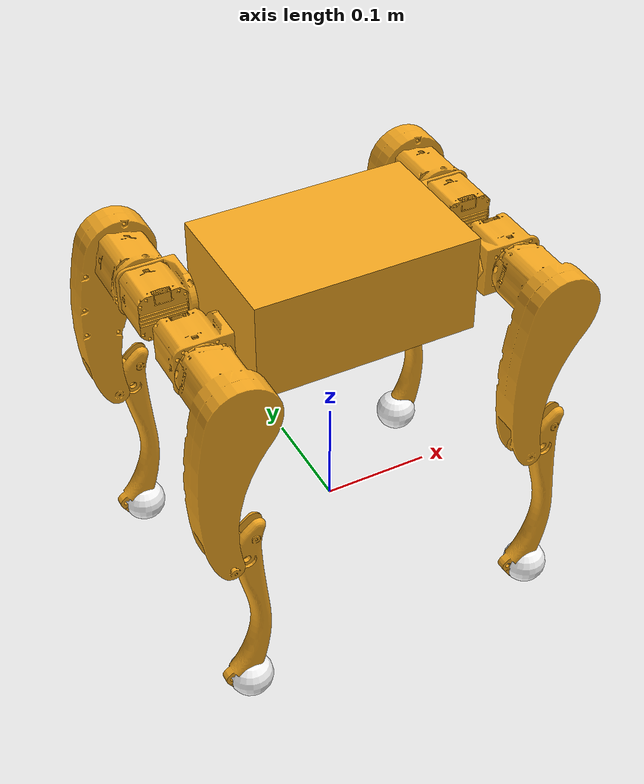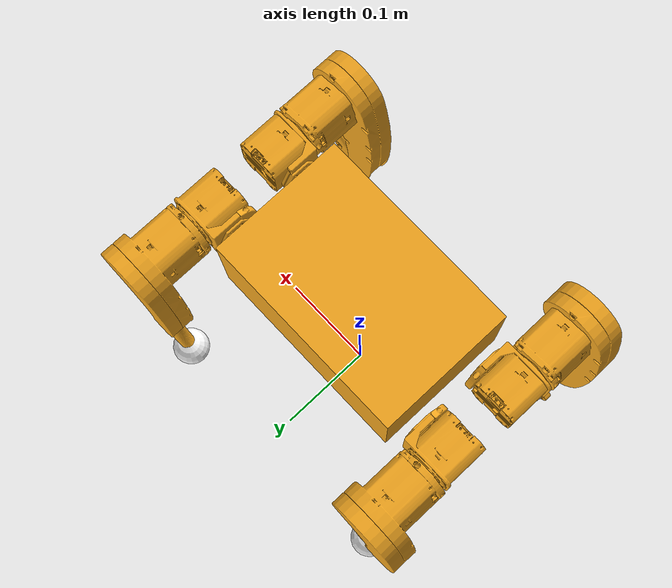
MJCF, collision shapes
<mujoco model="ri_4438">
  <compiler angle="radian" meshdir="../meshes/" autolimits="true" />
  <statistic meansize="0.118031" extent="0.565049" center="-0.00381955 -0.0037439 -0.0762009" />
  <asset>
    <!-- The original base mesh has 223,040 faces. These two files are an exact
         triangle-record split of that mesh for MuJoCo's 200,000-face STL limit. -->
    <mesh name="base_link_part_1" file="base_link_part_1.STL" />
    <mesh name="base_link_part_2" file="base_link_part_2.STL" />
    <mesh name="FL_hip" file="FL_hip.STL" />
    <mesh name="FL_thigh" file="FL_thigh.STL" />
    <mesh name="FL_calf" file="FL_calf.STL" />
    <mesh name="FL_foot" file="FL_foot.STL" />
    <mesh name="FR_hip" file="FR_hip.STL" />
    <mesh name="FR_thigh" file="FR_thigh.STL" />
    <mesh name="FR_calf" file="FR_calf.STL" />
    <mesh name="FR_foot" file="FR_foot.STL" />
    <mesh name="RL_hip" file="RL_hip.STL" />
    <mesh name="RL_thigh" file="RL_thigh.STL" />
    <mesh name="RL_calf" file="RL_calf.STL" />
    <mesh name="RL_foot" file="RL_foot.STL" />
    <mesh name="RR_hip" file="RR_hip.STL" />
    <mesh name="RR_thigh" file="RR_thigh.STL" />
    <mesh name="RR_calf" file="RR_calf.STL" />
    <mesh name="RR_foot" file="RR_foot.STL" />
    <material name="visual_body" rgba="0.78 0.78 0.78 1" specular="0.25" shininess="0.35" />
    <material name="collision_debug" rgba="0.95 0.65 0.12 0.35" specular="0" />
  </asset>
  <worldbody>
    <body name="base_link" pos="0 0 0.25">
      <freejoint name="float_base" />
      <inertial pos="-0.00301327 0.00204115 -0.000635" mass="2.74343032" fullinertia="0.00588039 0.01284666 0.01600904 0.00048912 0.00004378 -0.00003516" />
      <site name="imu" pos="0 0 0" />
      <geom type="mesh" contype="0" conaffinity="0" group="1" density="0" rgba="0.752941 0.752941 0.752941 1" mesh="base_link_part_1" material="visual_body" />
      <geom type="mesh" contype="0" conaffinity="0" group="1" density="0" rgba="0.752941 0.752941 0.752941 1" mesh="base_link_part_2" material="visual_body" />
      <!-- MuJoCo box size stores half-extents; this matches the URDF box. -->
      <geom name="base_collision" type="box" pos="0 -0.0011 0" size="0.10 0.065 0.045" group="3" material="collision_debug" rgba="0.95 0.65 0.12 0.35" />
      <body name="FL_hip" pos="0.14165 0.037 0">
        <inertial pos="-0.00266064 0.00153194 -0.00011724" quat="-0.0372601 0.71114 0.0168296 0.701861" mass="0.270797" diaginertia="3.5803e-05 3.43926e-05 2.35344e-05" />
        <joint name="FL_hip_joint" pos="0 0 0" axis="1 0 0" range="-1.5 1.5" />
        <geom type="mesh" contype="0" conaffinity="0" group="1" density="0" rgba="0.752941 0.752941 0.752941 1" mesh="FL_hip" material="visual_body" />
        <geom name="FL_hip_geom" type="mesh" mesh="FL_hip" group="3" material="collision_debug" rgba="0.95 0.65 0.12 0.35" />
        <body name="FL_thigh" pos="0 0.0834 0">
          <inertial pos="-0.00360471 -0.0176323 -0.0219034" quat="0.988193 0.126831 0.0446349 0.0734545" mass="0.480862" diaginertia="0.00104576 0.000990493 0.000191919" />
          <joint name="FL_thigh_joint" pos="0 0 0" axis="0 1 0" range="-1.57 3.49" />
          <geom type="mesh" contype="0" conaffinity="0" group="1" density="0" rgba="0.752941 0.752941 0.752941 1" mesh="FL_thigh" material="visual_body" />
          <geom name="FL_thigh_geom" type="mesh" mesh="FL_thigh" group="3" material="collision_debug" rgba="0.95 0.65 0.12 0.35" />
          <body name="FL_calf" pos="0 0 -0.15">
            <inertial pos="0.00899888 2.89519e-06 -0.0659713" quat="0.70692 -0.0124579 -0.0123951 0.707075" mass="0.065602" diaginertia="0.000257707 0.000253407 6.87944e-06" />
            <joint name="FL_calf_joint" pos="0 0 0" axis="0 1 0" range="-2.53 -0.84" />
            <geom type="mesh" contype="0" conaffinity="0" group="1" density="0" rgba="0.752941 0.752941 0.752941 1" mesh="FL_calf" material="visual_body" />
            <geom name="FL_calf_geom" type="mesh" mesh="FL_calf" group="3" material="collision_debug" rgba="0.95 0.65 0.12 0.35" />
            <geom pos="0 0 -0.15" type="mesh" contype="0" conaffinity="0" group="1" density="0" rgba="1 1 1 1" mesh="FL_foot" material="visual_body" />
            <geom size="0.02" pos="0 0 -0.15" rgba="1 1 1 1" name="FL" type="sphere" group="3" friction="1.0 0.005 0.0001" material="collision_debug" />
            <site name="FL_foot_site" pos="0 0 -0.15" size="0.01" />
          </body>
        </body>
      </body>
      <body name="FR_hip" pos="0.14165 -0.037 0">
        <inertial pos="-0.00266064 -0.00153194 0.00011724" quat="0.0168296 0.701861 -0.0372601 0.71114" mass="0.270797" diaginertia="3.5803e-05 3.43926e-05 2.35344e-05" />
        <joint name="FR_hip_joint" pos="0 0 0" axis="1 0 0" range="-1.5 1.5" />
        <geom type="mesh" contype="0" conaffinity="0" group="1" density="0" rgba="0.752941 0.752941 0.752941 1" mesh="FR_hip" material="visual_body" />
        <geom name="FR_hip_geom" type="mesh" mesh="FR_hip" group="3" material="collision_debug" rgba="0.95 0.65 0.12 0.35" />
        <body name="FR_thigh" pos="0 -0.0834 0">
          <inertial pos="-0.00559051 0.0176322 -0.0210737" quat="0.98578 -0.125515 0.0933783 -0.0613606" mass="0.480861" diaginertia="0.00105408 0.000996037 0.000194768" />
          <joint name="FR_thigh_joint" pos="0 0 0" axis="0 1 0" range="-1.57 3.49" />
          <geom type="mesh" contype="0" conaffinity="0" group="1" density="0" rgba="0.752941 0.752941 0.752941 1" mesh="FR_thigh" material="visual_body" />
          <geom name="FR_thigh_geom" type="mesh" mesh="FR_thigh" group="3" material="collision_debug" rgba="0.95 0.65 0.12 0.35" />
          <body name="FR_calf" pos="0 0 -0.15">
            <inertial pos="0.00899889 2.89519e-06 -0.0659713" quat="0.70692 -0.0124579 -0.0123951 0.707075" mass="0.065602" diaginertia="0.000257707 0.000253407 6.87944e-06" />
            <joint name="FR_calf_joint" pos="0 0 0" axis="0 1 0" range="-2.53 -0.84" />
            <geom type="mesh" contype="0" conaffinity="0" group="1" density="0" rgba="0.752941 0.752941 0.752941 1" mesh="FR_calf" material="visual_body" />
            <geom name="FR_calf_geom" type="mesh" mesh="FR_calf" group="3" material="collision_debug" rgba="0.95 0.65 0.12 0.35" />
            <geom pos="0 0 -0.15" type="mesh" contype="0" conaffinity="0" group="1" density="0" rgba="1 1 1 1" mesh="FR_foot" material="visual_body" />
            <geom size="0.02" pos="0 0 -0.15" rgba="1 1 1 1" name="FR" type="sphere" group="3" friction="1.0 0.005 0.0001" material="collision_debug" />
            <site name="FR_foot_site" pos="0 0 -0.15" size="0.01" />
          </body>
        </body>
      </body>
      <body name="RL_hip" pos="-0.14165 0.037 0">
        <inertial pos="0.00266064 0.00153194 0.00011724" quat="0.0372601 0.71114 -0.0168296 0.701861" mass="0.270797" diaginertia="3.5803e-05 3.43926e-05 2.35344e-05" />
        <joint name="RL_hip_joint" pos="0 0 0" axis="1 0 0" range="-1.5 1.5" />
        <geom type="mesh" contype="0" conaffinity="0" group="1" density="0" rgba="0.752941 0.752941 0.752941 1" mesh="RL_hip" material="visual_body" />
        <geom name="RL_hip_geom" type="mesh" mesh="RL_hip" group="3" material="collision_debug" rgba="0.95 0.65 0.12 0.35" />
        <body name="RL_thigh" pos="0 0.0834 0">
          <inertial pos="-0.00555466 -0.0176323 -0.0210155" quat="0.985074 0.127403 0.0866694 0.0767224" mass="0.480862" diaginertia="0.00105519 0.000997623 0.00019482" />
          <joint name="RL_thigh_joint" pos="0 0 0" axis="0 1 0" range="-1.57 3.49" />
          <geom type="mesh" contype="0" conaffinity="0" group="1" density="0" rgba="0.752941 0.752941 0.752941 1" mesh="RL_thigh" material="visual_body" />
          <geom name="RL_thigh_geom" type="mesh" mesh="RL_thigh" group="3" material="collision_debug" rgba="0.95 0.65 0.12 0.35" />
          <body name="RL_calf" pos="0 0 -0.15">
            <inertial pos="0.00899888 2.89519e-06 -0.0659713" quat="0.70692 -0.0124579 -0.0123951 0.707075" mass="0.065602" diaginertia="0.000257707 0.000253407 6.87944e-06" />
            <joint name="RL_calf_joint" pos="0 0 0" axis="0 1 0" range="-2.53 -0.84" />
            <geom type="mesh" contype="0" conaffinity="0" group="1" density="0" rgba="0.752941 0.752941 0.752941 1" mesh="RL_calf" material="visual_body" />
            <geom name="RL_calf_geom" type="mesh" mesh="RL_calf" group="3" material="collision_debug" rgba="0.95 0.65 0.12 0.35" />
            <geom pos="0 0 -0.15" type="mesh" contype="0" conaffinity="0" group="1" density="0" rgba="1 1 1 1" mesh="RL_foot" material="visual_body" />
            <geom size="0.02" pos="0 0 -0.15" rgba="1 1 1 1" name="RL" type="sphere" group="3" friction="1.0 0.005 0.0001" material="collision_debug" />
            <site name="RL_foot_site" pos="0 0 -0.15" size="0.01" />
          </body>
        </body>
      </body>
      <body name="RR_hip" pos="-0.14165 -0.037 0">
        <inertial pos="0.00266064 -0.00153194 -0.00011724" quat="-0.0168296 0.701861 0.0372601 0.71114" mass="0.270797" diaginertia="3.5803e-05 3.43926e-05 2.35344e-05" />
        <joint name="RR_hip_joint" pos="0 0 0" axis="1 0 0" range="-1.5 1.5" />
        <geom type="mesh" contype="0" conaffinity="0" group="1" density="0" rgba="0.752941 0.752941 0.752941 1" mesh="RR_hip" material="visual_body" />
        <geom name="RR_hip_geom" type="mesh" mesh="RR_hip" group="3" material="collision_debug" rgba="0.95 0.65 0.12 0.35" />
        <body name="RR_thigh" pos="0 -0.0834 0">
          <inertial pos="-0.00521957 0.01761785 -0.02116423" mass="0.48086142" fullinertia="0.00102378 0.00095271 0.00026924 -0.00004288 -0.00015179 -0.00018005" />
          <joint name="RR_thigh_joint" pos="0 0 0" axis="0 1 0" range="-1.57 3.49" />
          <geom type="mesh" contype="0" conaffinity="0" group="1" density="0" rgba="0.752941 0.752941 0.752941 1" mesh="RR_thigh" material="visual_body" />
          <geom name="RR_thigh_geom" type="mesh" mesh="RR_thigh" group="3" material="collision_debug" rgba="0.95 0.65 0.12 0.35" />
          <body name="RR_calf" pos="0 0 -0.15">
            <inertial pos="0.00899888 2.89519e-06 -0.0659713" quat="0.70692 -0.0124579 -0.0123951 0.707075" mass="0.065602" diaginertia="0.000257707 0.000253407 6.87944e-06" />
            <joint name="RR_calf_joint" pos="0 0 0" axis="0 1 0" range="-2.53 -0.84" />
            <geom type="mesh" contype="0" conaffinity="0" group="1" density="0" rgba="0.752941 0.752941 0.752941 1" mesh="RR_calf" material="visual_body" />
            <geom name="RR_calf_geom" type="mesh" mesh="RR_calf" group="3" material="collision_debug" rgba="0.95 0.65 0.12 0.35" />
            <geom pos="0 0 -0.15" type="mesh" contype="0" conaffinity="0" group="1" density="0" rgba="1 1 1 1" mesh="RR_foot" material="visual_body" />
            <geom size="0.02" pos="0 0 -0.15" rgba="1 1 1 1" name="RR" type="sphere" group="3" friction="1.0 0.005 0.0001" material="collision_debug" />
            <site name="RR_foot_site" pos="0 0 -0.15" size="0.01" />
          </body>
        </body>
      </body>
    </body>
  </worldbody>
  <default>
    <joint damping="0.02" frictionloss="0.06" armature="0.008234" />
    <geom friction="0.4 0.005 0.0001" margin="0.001" condim="3" />
  </default>
  <actuator>
    <motor name="FL_hip_joint" joint="FL_hip_joint" gear="1" ctrllimited="true" ctrlrange="-10 10" />
    <motor name="FL_thigh_joint" joint="FL_thigh_joint" gear="1" ctrllimited="true" ctrlrange="-10 10" />
    <motor name="FL_calf_joint" joint="FL_calf_joint" gear="1" ctrllimited="true" ctrlrange="-10 10" />
    <motor name="FR_hip_joint" joint="FR_hip_joint" gear="1" ctrllimited="true" ctrlrange="-10 10" />
    <motor name="FR_thigh_joint" joint="FR_thigh_joint" gear="1" ctrllimited="true" ctrlrange="-10 10" />
    <motor name="FR_calf_joint" joint="FR_calf_joint" gear="1" ctrllimited="true" ctrlrange="-10 10" />
    <motor name="RL_hip_joint" joint="RL_hip_joint" gear="1" ctrllimited="true" ctrlrange="-10 10" />
    <motor name="RL_thigh_joint" joint="RL_thigh_joint" gear="1" ctrllimited="true" ctrlrange="-10 10" />
    <motor name="RL_calf_joint" joint="RL_calf_joint" gear="1" ctrllimited="true" ctrlrange="-10 10" />
    <motor name="RR_hip_joint" joint="RR_hip_joint" gear="1" ctrllimited="true" ctrlrange="-10 10" />
    <motor name="RR_thigh_joint" joint="RR_thigh_joint" gear="1" ctrllimited="true" ctrlrange="-10 10" />
    <motor name="RR_calf_joint" joint="RR_calf_joint" gear="1" ctrllimited="true" ctrlrange="-10 10" />
  </actuator>
</mujoco>
